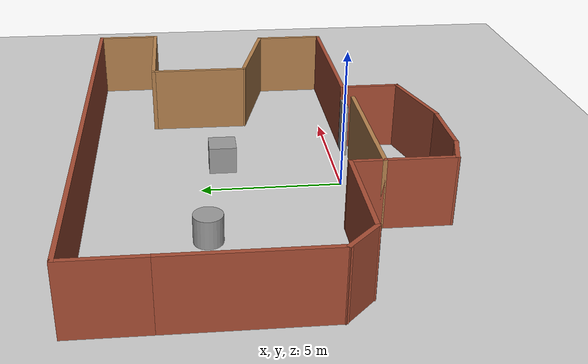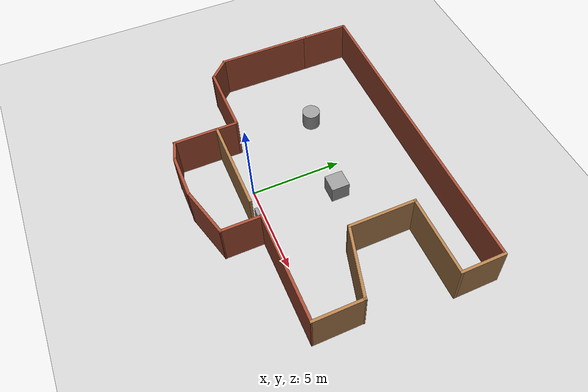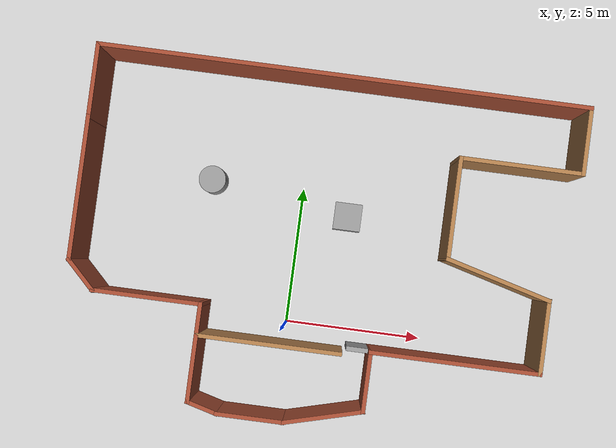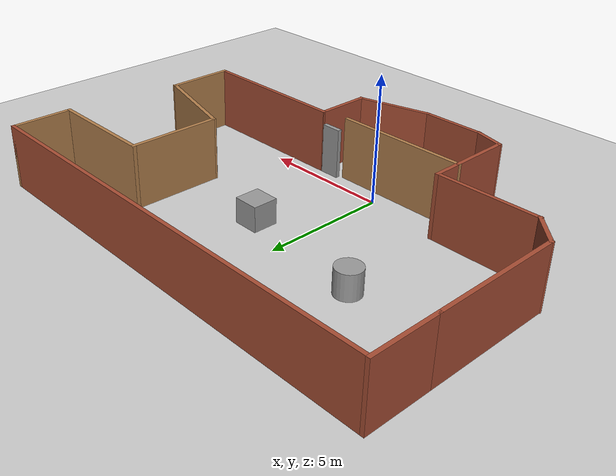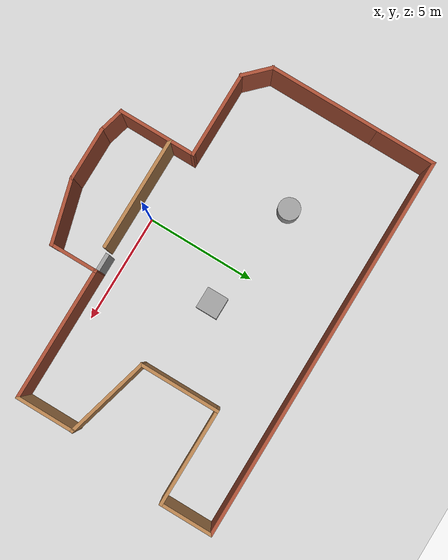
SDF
<sdf version="1.7">
 <world name="default">
  <light name="sun" type="directional">
   <pose>0 0 10 0 -0 0</pose>
   <diffuse>0.8 0.8 0.8 1</diffuse>
   <specular>0.2 0.2 0.2 1</specular>
   <attenuation>
    <range>1000</range>
    <constant>0.9</constant>
    <linear>0.01</linear>
    <quadratic>0.001</quadratic>
   </attenuation>
   <direction>-0.5 0.1 -0.9</direction>
   <spot><inner_angle>0</inner_angle><outer_angle>0</outer_angle><falloff>0</falloff></spot>
  </light>
  <model name="ground_plane">
   <static>1</static>
   <link name="link">
    <collision name="collision">
     <geometry><plane><normal>0 0 1</normal><size>100 100</size></plane></geometry>
     <surface><friction><ode><mu>100</mu><mu2>50</mu2></ode></friction></surface>
    </collision>
    <visual name="visual">
     <cast_shadows>0</cast_shadows>
     <geometry><plane><normal>0 0 1</normal><size>100 100</size></plane></geometry>
     <material>
      <script><uri>file://media/materials/scripts/gazebo.material</uri><name>Gazebo/Grey</name></script>
     </material>
    </visual>
   </link>
  </model>
  <gravity>0 0 -9.8</gravity>
  <magnetic_field>6e-06 2.3e-05 -4.2e-05</magnetic_field>
  <atmosphere type="adiabatic"/>
  <physics type="ode">
   <max_step_size>0.001</max_step_size>
   <real_time_factor>1</real_time_factor>
   <real_time_update_rate>1000</real_time_update_rate>
  </physics>
  <scene><ambient>0.4 0.4 0.4 1</ambient><background>0.7 0.7 0.7 1</background><shadows>1</shadows></scene>
  <audio><device>default</device></audio>
  <spherical_coordinates>
   <surface_model>EARTH_WGS84</surface_model>
   <latitude_deg>0</latitude_deg>
   <longitude_deg>0</longitude_deg>
   <elevation>0</elevation>
   <heading_deg>0</heading_deg>
  </spherical_coordinates>
  <model name="waelsOffice">
   <pose>0.979873 2.81152 0 0 -0 0</pose>
   <link name="Door_0">
    <collision name="Door_0_Collision">
     <geometry><box><size>0.9 0.17 2</size></box></geometry>
     <pose>0 0 1 0 -0 0</pose>
    </collision>
    <visual name="Door_0_Visual">
     <pose>0 0 1 0 -0 0</pose>
     <geometry><box><size>0.9 0.17 2</size></box></geometry>
     <material>
      <script><uri>file://media/materials/scripts/gazebo.material</uri><name>Gazebo/Grey</name></script>
     </material>
    </visual>
    <pose>1.77013 -3.36152 0 0 -0 0</pose>
   </link>
   <link name="Wall_0">
    <collision name="Wall_0_Collision">
     <geometry><box><size>2.5 0.15 2.5</size></box></geometry>
     <pose>0 0 1.25 0 -0 0</pose>
    </collision>
    <visual name="Wall_0_Visual">
     <pose>0 0 1.25 0 -0 0</pose>
     <geometry><box><size>2.5 0.15 2.5</size></box></geometry>
     <material>
      <script><uri>file://media/materials/scripts/gazebo.material</uri><name>Gazebo/Bricks</name></script>
      <ambient>1 1 1 1</ambient>
     </material>
     <meta><layer>0</layer></meta>
    </visual>
    <pose>-3.97987 -4.72652 0 0 -0 -1.5708</pose>
   </link>
   <link name="Wall_1">
    <collision name="Wall_1_Collision">
     <geometry><box><size>1.25 0.15 2.5</size></box></geometry>
     <pose>0 0 1.25 0 -0 0</pose>
    </collision>
    <visual name="Wall_1_Visual">
     <pose>0 0 1.25 0 -0 0</pose>
     <geometry><box><size>1.25 0.15 2.5</size></box></geometry>
     <material>
      <script><uri>file://media/materials/scripts/gazebo.material</uri><name>Gazebo/Bricks</name></script>
      <ambient>1 1 1 1</ambient>
     </material>
     <meta><layer>0</layer></meta>
    </visual>
    <pose>-3.44861 -6.04387 0 0 -0 -0.261799</pose>
   </link>
   <link name="Wall_10">
    <collision name="Wall_10_Collision">
     <geometry><box><size>1.5 0.15 2.5</size></box></geometry>
     <pose>0 0 1.25 0 -0 0</pose>
    </collision>
    <visual name="Wall_10_Visual">
     <pose>0 0 1.25 0 -0 0</pose>
     <geometry><box><size>1.5 0.15 2.5</size></box></geometry>
     <material>
      <script><uri>file://media/materials/scripts/gazebo.material</uri><name>Gazebo/Bricks</name></script>
      <ambient>1 1 1 1</ambient>
     </material>
     <meta><layer>0</layer></meta>
    </visual>
    <pose>-8.30717 -1.97422 0 0 -0 2.35619</pose>
   </link>
   <link name="Wall_11">
    <collision name="Wall_11_Collision">
     <geometry><box><size>5.25 0.15 2.5</size></box></geometry>
     <pose>0 0 1.25 0 -0 0</pose>
    </collision>
    <visual name="Wall_11_Visual">
     <pose>0 0 1.25 0 -0 0</pose>
     <geometry><box><size>5.25 0.15 2.5</size></box></geometry>
     <material>
      <script><uri>file://media/materials/scripts/gazebo.material</uri><name>Gazebo/Bricks</name></script>
      <ambient>1 1 1 1</ambient>
     </material>
     <meta><layer>0</layer></meta>
    </visual>
    <pose>-8.78447 1.05307 0 0 -0 1.5708</pose>
   </link>
   <link name="Wall_12">
    <collision name="Wall_12_Collision">
     <geometry><box><size>2.75 0.15 2.5</size></box></geometry>
     <pose>0 0 1.25 0 -0 0</pose>
    </collision>
    <visual name="Wall_12_Visual">
     <pose>0 0 1.25 0 -0 0</pose>
     <geometry><box><size>2.75 0.15 2.5</size></box></geometry>
     <material>
      <script><uri>file://media/materials/scripts/gazebo.material</uri><name>Gazebo/Bricks</name></script>
      <ambient>1 1 1 1</ambient>
     </material>
     <meta><layer>0</layer></meta>
    </visual>
    <pose>-8.78447 4.90308 0 0 -0 1.5708</pose>
   </link>
   <link name="Wall_13">
    <collision name="Wall_13_Collision">
     <geometry><box><size>17.75 0.15 2.5</size></box></geometry>
     <pose>0 0 1.25 0 -0 0</pose>
    </collision>
    <visual name="Wall_13_Visual">
     <pose>0 0 1.25 0 -0 0</pose>
     <geometry><box><size>17.75 0.15 2.5</size></box></geometry>
     <material>
      <script><uri>file://media/materials/scripts/gazebo.material</uri><name>Gazebo/Bricks</name></script>
      <ambient>1 1 1 1</ambient>
     </material>
     <meta><layer>0</layer></meta>
    </visual>
    <pose>0.015533 6.20308 0 0 -0 0</pose>
   </link>
   <link name="Wall_14">
    <collision name="Wall_14_Collision">
     <geometry><box><size>2.5 0.15 2.5</size></box></geometry>
     <pose>0 0 1.25 0 -0 0</pose>
    </collision>
    <visual name="Wall_14_Visual">
     <pose>0 0 1.25 0 -0 0</pose>
     <geometry><box><size>2.5 0.15 2.5</size></box></geometry>
     <material>
      <script><uri>file://media/materials/scripts/gazebo.material</uri><name>Gazebo/Wood</name></script>
      <ambient>1 1 1 1</ambient>
     </material>
     <meta><layer>0</layer></meta>
    </visual>
    <pose>8.81553 5.02808 0 0 -0 -1.5708</pose>
   </link>
   <link name="Wall_15">
    <collision name="Wall_15_Collision">
     <geometry><box><size>4.5 0.15 2.5</size></box></geometry>
     <pose>0 0 1.25 0 -0 0</pose>
    </collision>
    <visual name="Wall_15_Visual">
     <pose>0 0 1.25 0 -0 0</pose>
     <geometry><box><size>4.5 0.15 2.5</size></box></geometry>
     <material>
      <script><uri>file://media/materials/scripts/gazebo.material</uri><name>Gazebo/Wood</name></script>
      <ambient>1 1 1 1</ambient>
     </material>
     <meta><layer>0</layer></meta>
    </visual>
    <pose>6.64053 3.85308 0 0 -0 3.14159</pose>
   </link>
   <link name="Wall_16">
    <collision name="Wall_16_Collision">
     <geometry><box><size>3.75 0.15 2.5</size></box></geometry>
     <pose>0 0 1.25 0 -0 0</pose>
    </collision>
    <visual name="Wall_16_Visual">
     <pose>0 0 1.25 0 -0 0</pose>
     <geometry><box><size>3.75 0.15 2.5</size></box></geometry>
     <material>
      <script><uri>file://media/materials/scripts/gazebo.material</uri><name>Gazebo/Wood</name></script>
      <ambient>1 1 1 1</ambient>
     </material>
     <meta><layer>0</layer></meta>
    </visual>
    <pose>4.46553 2.05308 0 0 -0 -1.5708</pose>
   </link>
   <link name="Wall_17">
    <collision name="Wall_17_Collision">
     <geometry><box><size>4 0.15 2.5</size></box></geometry>
     <pose>0 0 1.25 0 -0 0</pose>
    </collision>
    <visual name="Wall_17_Visual">
     <pose>0 0 1.25 0 -0 0</pose>
     <geometry><box><size>4 0.15 2.5</size></box></geometry>
     <material>
      <script><uri>file://media/materials/scripts/gazebo.material</uri><name>Gazebo/Wood</name></script>
      <ambient>1 1 1 1</ambient>
     </material>
     <meta><layer>0</layer></meta>
    </visual>
    <pose>6.32494 -0.245152 0 0 -0 -0.261799</pose>
   </link>
   <link name="Wall_18">
    <collision name="Wall_18_Collision">
     <geometry><box><size>2.75 0.15 2.5</size></box></geometry>
     <pose>0 0 1.25 0 -0 0</pose>
    </collision>
    <visual name="Wall_18_Visual">
     <pose>0 0 1.25 0 -0 0</pose>
     <geometry><box><size>2.75 0.15 2.5</size></box></geometry>
     <material>
      <script><uri>file://media/materials/scripts/gazebo.material</uri><name>Gazebo/Wood</name></script>
      <ambient>1 1 1 1</ambient>
     </material>
     <meta><layer>0</layer></meta>
    </visual>
    <pose>8.18435 -2.04338 0 0 -0 -1.5708</pose>
   </link>
   <link name="Wall_19">
    <collision name="Wall_19_Collision">
     <geometry><box><size>6.14882 0.15 2.5</size></box></geometry>
     <pose>0 0 1.25 0 -0 0</pose>
    </collision>
    <visual name="Wall_19_Visual">
     <pose>0 0 1.25 0 -0 0</pose>
     <geometry><box><size>6.14882 0.15 2.5</size></box></geometry>
     <material>
      <script><uri>file://media/materials/scripts/gazebo.material</uri><name>Gazebo/Bricks</name></script>
      <ambient>1 1 1 1</ambient>
     </material>
     <meta><layer>0</layer></meta>
    </visual>
    <pose>5.18494 -3.34598 0 0 -0 -3.14073</pose>
   </link>
   <link name="Wall_2">
    <collision name="Wall_2_Collision">
     <geometry><box><size>2.5 0.15 2.5</size></box></geometry>
     <pose>0 0 1.25 0 -0 0</pose>
    </collision>
    <visual name="Wall_2_Visual">
     <pose>0 0 1.25 0 -0 0</pose>
     <geometry><box><size>2.5 0.15 2.5</size></box></geometry>
     <material>
      <script><uri>file://media/materials/scripts/gazebo.material</uri><name>Gazebo/Bricks</name></script>
      <ambient>1 1 1 1</ambient>
     </material>
     <meta><layer>0</layer></meta>
    </visual>
    <pose>-1.74235 -6.18622 0 0 -0 0</pose>
   </link>
   <link name="Wall_3">
    <collision name="Wall_3_Collision">
     <geometry><box><size>3 0.15 2.5</size></box></geometry>
     <pose>0 0 1.25 0 -0 0</pose>
    </collision>
    <visual name="Wall_3_Visual">
     <pose>0 0 1.25 0 -0 0</pose>
     <geometry><box><size>3 0.15 2.5</size></box></geometry>
     <material>
      <script><uri>file://media/materials/scripts/gazebo.material</uri><name>Gazebo/Bricks</name></script>
      <ambient>1 1 1 1</ambient>
     </material>
     <meta><layer>0</layer></meta>
    </visual>
    <pose>0.80909 -5.8174 0 0 -0 0.261799</pose>
   </link>
   <link name="Wall_4">
    <collision name="Wall_4_Collision">
     <geometry><box><size>2.25 0.15 2.5</size></box></geometry>
     <pose>0 0 1.25 0 -0 0</pose>
    </collision>
    <visual name="Wall_4_Visual">
     <pose>0 0 1.25 0 -0 0</pose>
     <geometry><box><size>2.25 0.15 2.5</size></box></geometry>
     <material>
      <script><uri>file://media/materials/scripts/gazebo.material</uri><name>Gazebo/Bricks</name></script>
      <ambient>1 1 1 1</ambient>
     </material>
     <meta><layer>0</layer></meta>
    </visual>
    <pose>2.18553 -4.39859 0 0 -0 1.5708</pose>
   </link>
   <link name="Wall_6">
    <collision name="Wall_6_Collision">
     <geometry><box><size>5.25 0.15 2.5</size></box></geometry>
     <pose>0 0 1.25 0 -0 0</pose>
    </collision>
    <visual name="Wall_6_Visual">
     <pose>0 0 1.25 0 -0 0</pose>
     <geometry><box><size>5.25 0.15 2.5</size></box></geometry>
     <material>
      <script><uri>file://media/materials/scripts/gazebo.material</uri><name>Gazebo/Wood</name></script>
      <ambient>1 1 1 1</ambient>
     </material>
     <meta><layer>0</layer></meta>
    </visual>
    <pose>-1.42987 -3.55152 0 0 -0 0</pose>
   </link>
   <link name="Wall_8">
    <collision name="Wall_8_Collision">
     <geometry><box><size>1.25 0.15 2.5</size></box></geometry>
     <pose>0 0 1.25 0 -0 0</pose>
    </collision>
    <visual name="Wall_8_Visual">
     <pose>0 0 1.25 0 -0 0</pose>
     <geometry><box><size>1.25 0.15 2.5</size></box></geometry>
     <material>
      <script><uri>file://media/materials/scripts/gazebo.material</uri><name>Gazebo/Bricks</name></script>
      <ambient>1 1 1 1</ambient>
     </material>
     <meta><layer>0</layer></meta>
    </visual>
    <pose>-3.97987 -3.00152 0 0 -0 1.5708</pose>
   </link>
   <link name="Wall_9">
    <collision name="Wall_9_Collision">
     <geometry><box><size>4 0.15 2.5</size></box></geometry>
     <pose>0 0 1.25 0 -0 0</pose>
    </collision>
    <visual name="Wall_9_Visual">
     <pose>0 0 1.25 0 -0 0</pose>
     <geometry><box><size>4 0.15 2.5</size></box></geometry>
     <material>
      <script><uri>file://media/materials/scripts/gazebo.material</uri><name>Gazebo/Bricks</name></script>
      <ambient>1 1 1 1</ambient>
     </material>
     <meta><layer>0</layer></meta>
    </visual>
    <pose>-5.90487 -2.45152 0 0 -0 3.14159</pose>
   </link>
   <static>1</static>
  </model>
  <model name="unit_box">
   <pose>1.76259 4.15416 0.499995 -1e-05 -0 0</pose>
   <link name="link">
    <inertial>
     <mass>1</mass>
     <inertia>
      <ixx>0.166667</ixx>
      <ixy>0</ixy>
      <ixz>0</ixz>
      <iyy>0.166667</iyy>
      <iyz>0</iyz>
      <izz>0.166667</izz>
     </inertia>
    </inertial>
    <collision name="collision"><geometry><box><size>1 1 1</size></box></geometry></collision>
    <visual name="visual">
     <geometry><box><size>1 1 1</size></box></geometry>
     <material>
      <script><name>Gazebo/Grey</name><uri>file://media/materials/scripts/gazebo.material</uri></script>
     </material>
    </visual>
   </link>
  </model>
  <model name="unit_cylinder">
   <pose>-3.35559 4.88059 0.499997 3e-06 4e-06 -0</pose>
   <link name="link">
    <inertial>
     <mass>1</mass>
     <inertia><ixx>0.145833</ixx><ixy>0</ixy><ixz>0</ixz><iyy>0.145833</iyy><iyz>0</iyz><izz>0.125</izz></inertia>
    </inertial>
    <collision name="collision">
     <geometry><cylinder><radius>0.5</radius><length>1</length></cylinder></geometry>
    </collision>
    <visual name="visual">
     <geometry><cylinder><radius>0.5</radius><length>1</length></cylinder></geometry>
     <material>
      <script><name>Gazebo/Grey</name><uri>file://media/materials/scripts/gazebo.material</uri></script>
     </material>
    </visual>
   </link>
  </model>
 </world>
</sdf>
